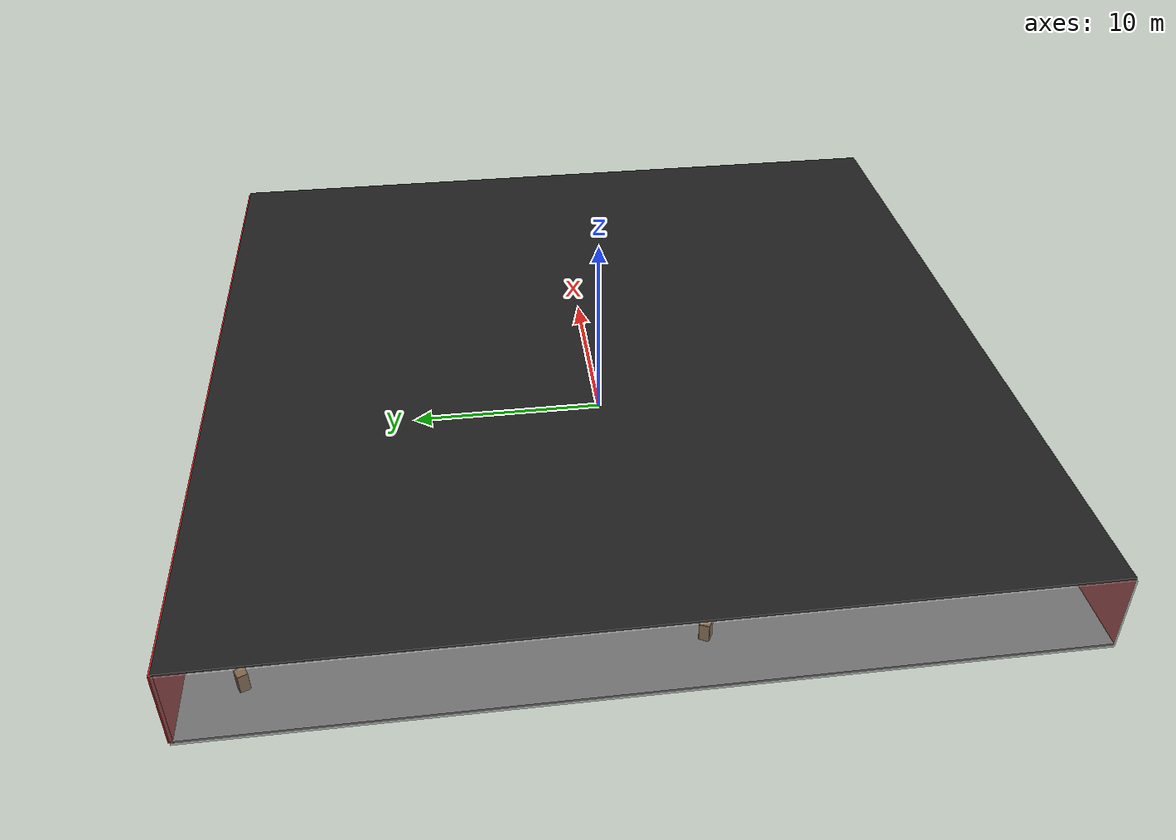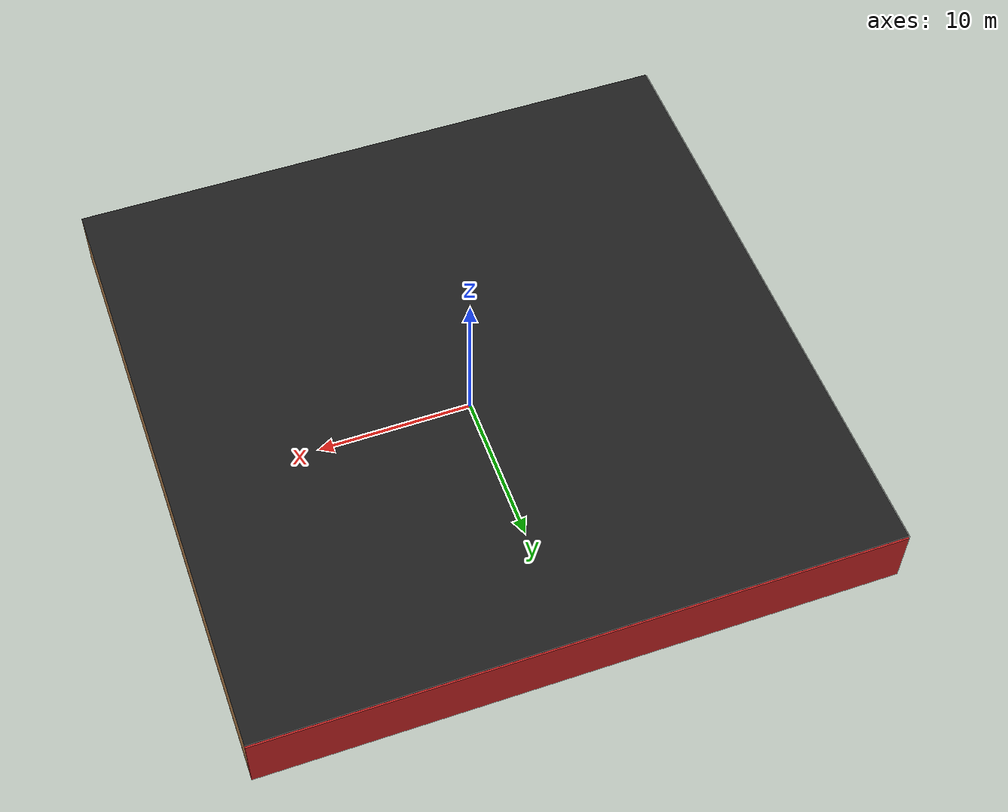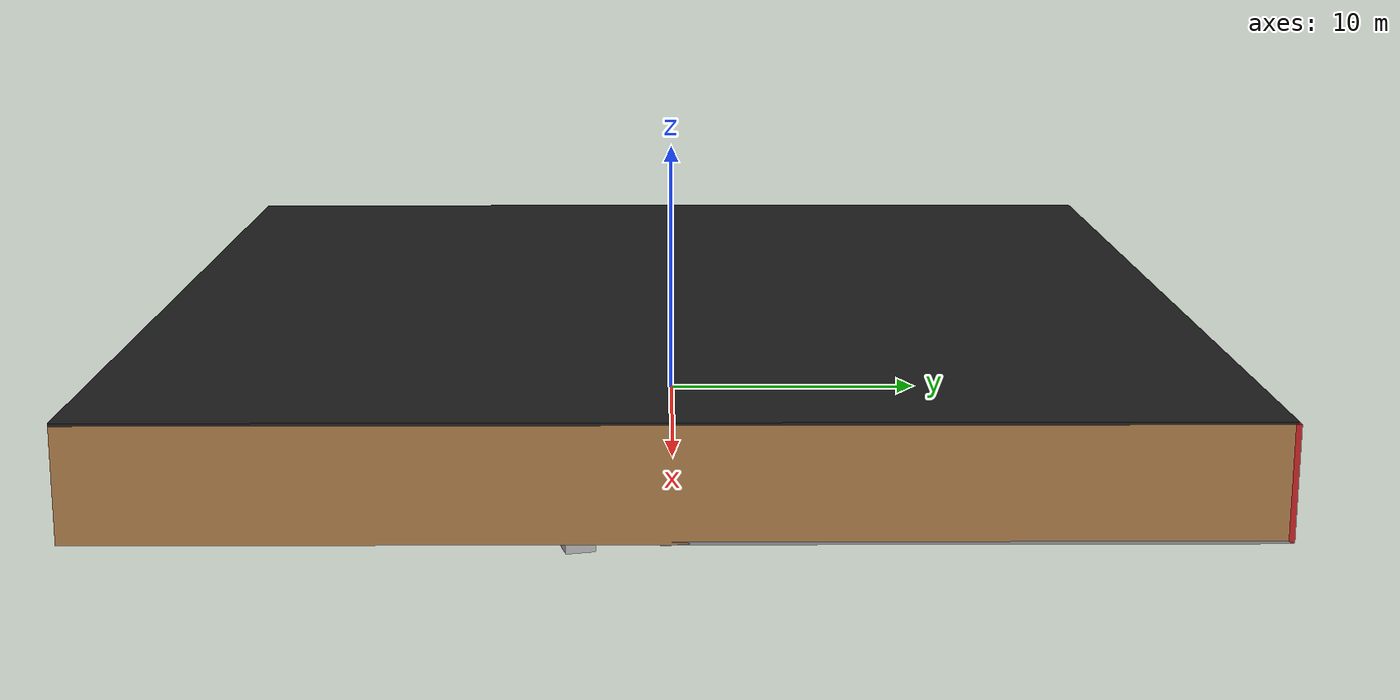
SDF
<sdf version="1.4">
 <world name="default">
  <physics type="ode">
   <max_step_size>0.001</max_step_size>
   <real_time_factor>1</real_time_factor>
   <real_time_update_rate>1000</real_time_update_rate>
   <gravity>0 0 -9.8</gravity>
  </physics>
  <scene><ambient>0.4 0.4 0.4 1</ambient><background>0.7 0.7 0.7 1</background><shadows>1</shadows></scene>
  <model name="Surrounding">
   <static>1</static>
   <link name="Ceiling">
    <collision name="Ceiling_Collision"><geometry><box><size>40 40 0.1</size></box></geometry></collision>
    <visual name="Ceiling_Visual">
     <geometry><box><size>40 40 0.1</size></box></geometry>
     <material>
      <script><uri>file://media/materials/scripts/gazebo.material</uri><name>Gazebo/Black</name></script>
     </material>
    </visual>
    <pose>0 0 4.05 0 0 0</pose>
   </link>
   <link name="Wall_South">
    <collision name="Wall_South_Collision">
     <geometry><box><size>40 0 4</size></box></geometry>
     <pose>0 0 2 0 -0 0</pose>
    </collision>
    <visual name="Wall_South_Visual">
     <pose>0 0 2 0 -0 0</pose>
     <geometry><box><size>40 0 4</size></box></geometry>
     <material>
      <script><uri>file://media/materials/scripts/gazebo.material</uri><name>Gazebo/RedGlow</name></script>
     </material>
    </visual>
    <velocity_decay><linear>0</linear><angular>0</angular></velocity_decay>
    <pose>0 -20 0 0 -0 0</pose>
   </link>
   <link name="Wall_East">
    <collision name="Wall_21_Collision">
     <geometry><box><size>40 0 4</size></box></geometry>
     <pose>0 0 2 0 -0 0</pose>
    </collision>
    <visual name="Wall_21_Visual">
     <pose>0 0 2 0 -0 0</pose>
     <geometry><box><size>40 0 4</size></box></geometry>
     <material>
      <script><uri>file://media/materials/scripts/gazebo.material</uri><name>Gazebo/WoodPallet</name></script>
     </material>
    </visual>
    <velocity_decay><linear>0</linear><angular>0</angular></velocity_decay>
    <pose>20 0 0 0 -0 1.5708</pose>
   </link>
   <link name="Wall_North">
    <collision name="Wall_22_Collision">
     <geometry><box><size>40 0.2 4</size></box></geometry>
     <pose>0 0 2 0 -0 0</pose>
    </collision>
    <visual name="Wall_22_Visual">
     <pose>0 0 2 0 -0 0</pose>
     <geometry><box><size>40 0.2 4</size></box></geometry>
     <material>
      <script><uri>file://media/materials/scripts/gazebo.material</uri><name>Gazebo/RedBright</name></script>
     </material>
    </visual>
    <velocity_decay><linear>0</linear><angular>0</angular></velocity_decay>
    <pose>0 20 0 0 -0 0</pose>
   </link>
   <link name="Wall_West">
    <collision name="Wall_23_Collision">
     <geometry><box><size>40 0.2 4</size></box></geometry>
     <pose>0 0 2 0 -0 0</pose>
    </collision>
    <visual name="Wall_23_Visual">
     <pose>0 0 2 0 -0 0</pose>
     <geometry><box><size>40 0.2 4</size></box></geometry>
     <material>
      <script><uri>file://media/materials/scripts/gazebo.material</uri><name>Gazebo/GreyTransparent</name></script>
     </material>
    </visual>
    <velocity_decay><linear>0</linear><angular>0</angular></velocity_decay>
    <pose>-20 0 0 0 0 -1.5708</pose>
   </link>
   <link name="Ground_link">
    <collision name="collision">
     <pose>0 0 .05 0 -0 0</pose>
     <geometry><box><size>40 40 0.1</size></box></geometry>
    </collision>
    <visual name="visual">
     <pose>0 0 .05 0 -0 0</pose>
     <geometry><box><size>40 40 0.1</size></box></geometry>
     <material>
      <script><uri>file://media/materials/scripts/gazebo.material</uri><name>Gazebo/Grey</name></script>
     </material>
    </visual>
   </link>
   <static>1</static>
  </model>
  <spherical_coordinates>
   <surface_model>EARTH_WGS84</surface_model>
   <latitude_deg>0</latitude_deg>
   <longitude_deg>0</longitude_deg>
   <elevation>0</elevation>
   <heading_deg>0</heading_deg>
  </spherical_coordinates>
  <light name="lightball_0" type="diffuse">
   <diffuse>0.8 0.8 0.8 1</diffuse>
   <specular>0.2 0.2 0.2 1</specular>
   <attenuation>
    <range>100</range>
    <constant>0.7</constant>
    <linear>0.01</linear>
    <quadratic>0.001</quadratic>
   </attenuation>
   <direction>-0.5 0.1 -0.9</direction>
   <pose>14.5088415441 19.1114277784 3.57657005887 0 0 0</pose>
  </light>
  <light name="lightball_1" type="diffuse">
   <diffuse>0.8 0.8 0.8 1</diffuse>
   <specular>0.2 0.2 0.2 1</specular>
   <attenuation>
    <range>100</range>
    <constant>0.7</constant>
    <linear>0.01</linear>
    <quadratic>0.001</quadratic>
   </attenuation>
   <direction>-0.5 0.1 -0.9</direction>
   <pose>-13.8709950739 0.276319489277 3.08435676083 0 0 0</pose>
  </light>
  <light name="lightball_2" type="diffuse">
   <diffuse>0.8 0.8 0.8 1</diffuse>
   <specular>0.2 0.2 0.2 1</specular>
   <attenuation>
    <range>100</range>
    <constant>0.7</constant>
    <linear>0.01</linear>
    <quadratic>0.001</quadratic>
   </attenuation>
   <direction>-0.5 0.1 -0.9</direction>
   <pose>4.50429732733 12.4195119596 3.20464170706 0 0 0</pose>
  </light>
  <light name="lightball_3" type="diffuse">
   <diffuse>0.8 0.8 0.8 1</diffuse>
   <specular>0.2 0.2 0.2 1</specular>
   <attenuation>
    <range>100</range>
    <constant>0.7</constant>
    <linear>0.01</linear>
    <quadratic>0.001</quadratic>
   </attenuation>
   <direction>-0.5 0.1 -0.9</direction>
   <pose>-19.8559674068 5.64868759276 2.44371113496 0 0 0</pose>
  </light>
  <light name="lightball_4" type="diffuse">
   <diffuse>0.8 0.8 0.8 1</diffuse>
   <specular>0.2 0.2 0.2 1</specular>
   <attenuation>
    <range>100</range>
    <constant>0.7</constant>
    <linear>0.01</linear>
    <quadratic>0.001</quadratic>
   </attenuation>
   <direction>-0.5 0.1 -0.9</direction>
   <pose>1.08719954831 -9.96045386915 3.5256807557 0 0 0</pose>
  </light>
  <light name="lightball_5" type="diffuse">
   <diffuse>0.8 0.8 0.8 1</diffuse>
   <specular>0.2 0.2 0.2 1</specular>
   <attenuation>
    <range>100</range>
    <constant>0.7</constant>
    <linear>0.01</linear>
    <quadratic>0.001</quadratic>
   </attenuation>
   <direction>-0.5 0.1 -0.9</direction>
   <pose>9.01680619663 -0.481306971371 3.15956368579 0 0 0</pose>
  </light>
  <light name="lightball_6" type="diffuse">
   <diffuse>0.8 0.8 0.8 1</diffuse>
   <specular>0.2 0.2 0.2 1</specular>
   <attenuation>
    <range>100</range>
    <constant>0.7</constant>
    <linear>0.01</linear>
    <quadratic>0.001</quadratic>
   </attenuation>
   <direction>-0.5 0.1 -0.9</direction>
   <pose>-16.5725223637 -15.036369133 0.741782621691 0 0 0</pose>
  </light>
  <light name="lightball_7" type="diffuse">
   <diffuse>0.8 0.8 0.8 1</diffuse>
   <specular>0.2 0.2 0.2 1</specular>
   <attenuation>
    <range>100</range>
    <constant>0.7</constant>
    <linear>0.01</linear>
    <quadratic>0.001</quadratic>
   </attenuation>
   <direction>-0.5 0.1 -0.9</direction>
   <pose>-6.66658625195 -9.34889746435 3.15630989105 0 0 0</pose>
  </light>
  <light name="lightball_8" type="diffuse">
   <diffuse>0.8 0.8 0.8 1</diffuse>
   <specular>0.2 0.2 0.2 1</specular>
   <attenuation>
    <range>100</range>
    <constant>0.7</constant>
    <linear>0.01</linear>
    <quadratic>0.001</quadratic>
   </attenuation>
   <direction>-0.5 0.1 -0.9</direction>
   <pose>0.00450367752565 6.86558669679 2.63531918451 0 0 0</pose>
  </light>
  <light name="lightball_9" type="diffuse">
   <diffuse>0.8 0.8 0.8 1</diffuse>
   <specular>0.2 0.2 0.2 1</specular>
   <attenuation>
    <range>100</range>
    <constant>0.7</constant>
    <linear>0.01</linear>
    <quadratic>0.001</quadratic>
   </attenuation>
   <direction>-0.5 0.1 -0.9</direction>
   <pose>-7.92232562563 8.93979827736 1.13376730137 0 0 0</pose>
  </light>
  <light name="lightball_10" type="diffuse">
   <diffuse>0.8 0.8 0.8 1</diffuse>
   <specular>0.2 0.2 0.2 1</specular>
   <attenuation>
    <range>100</range>
    <constant>0.7</constant>
    <linear>0.01</linear>
    <quadratic>0.001</quadratic>
   </attenuation>
   <direction>-0.5 0.1 -0.9</direction>
   <pose>-2.59482127027 3.32704255605 2.96513364409 0 0 0</pose>
  </light>
  <light name="lightball_11" type="diffuse">
   <diffuse>0.8 0.8 0.8 1</diffuse>
   <specular>0.2 0.2 0.2 1</specular>
   <attenuation>
    <range>100</range>
    <constant>0.7</constant>
    <linear>0.01</linear>
    <quadratic>0.001</quadratic>
   </attenuation>
   <direction>-0.5 0.1 -0.9</direction>
   <pose>-17.6506082353 14.014721323 1.71251879005 0 0 0</pose>
  </light>
  <include><uri>model://cabinet</uri><pose>-17.2858081453 -2.41191751052 0 0 0 2.64905315835</pose></include>
  <include><uri>model://cabinet</uri><pose>-17.5358653572 17.3362739138 0 0 0 1.97858835089</pose></include>
  <include><uri>model://cabinet</uri><pose>-13.8355447 0.64117168792 0 0 0 1.52426284552</pose></include>
  <include>
   <uri>model://construction_cone</uri>
   <pose>-13.9314949406 7.55235255127 0 0 0 2.1618376745</pose>
  </include>
  <include><uri>model://cabinet</uri><pose>-14.7640732803 15.9636274305 0 0 0 1.72705513426</pose></include>
  <include>
   <uri>model://robocup_3Dsim_goal</uri>
   <pose>-12.425612109 -14.2268952631 0 0 0 2.03669588455</pose>
  </include>
  <include><uri>model://table</uri><pose>-12.5219175551 0.997885552412 0 0 0 2.7161899542</pose></include>
  <include><uri>model://table</uri><pose>-8.06161031299 -5.23334574222 0 0 0 0.199501994017</pose></include>
  <include>
   <uri>model://construction_cone</uri>
   <pose>-7.36220699917 9.38604608227 0 0 0 1.50787393063</pose>
  </include>
  <include><uri>model://cabinet</uri><pose>-5.20437169569 -12.6268497123 0 0 0 0.817469867446</pose></include>
  <include>
   <uri>model://construction_cone</uri>
   <pose>-1.38025133629 -15.0030147045 0 0 0 2.53333605465</pose>
  </include>
  <include>
   <uri>model://textured_shapes</uri>
   <pose>-3.30552999441 6.38051258868 0 0 0 1.46844312124</pose>
  </include>
  <include>
   <uri>model://textured_shapes</uri>
   <pose>0.892739387686 0.945914214535 0 0 0 2.83799114582</pose>
  </include>
  <include><uri>model://table</uri><pose>1.51292048433 15.9413893674 0 0 0 2.60482933957</pose></include>
  <include><uri>model://cabinet</uri><pose>2.7136887317 2.74670009001 0 0 0 1.64872057018</pose></include>
  <include><uri>model://cabinet</uri><pose>4.21688894093 11.3111046964 0 0 0 1.62778722698</pose></include>
  <include><uri>model://cabinet</uri><pose>5.65864505683 -5.77163195847 0 0 0 3.01865208885</pose></include>
  <include><uri>model://table</uri><pose>7.44620456494 3.87943296795 0 0 0 2.42372184881</pose></include>
  <include><uri>model://cabinet</uri><pose>8.80611641276 -11.8137321141 0 0 0 0.475195212376</pose></include>
  <include>
   <uri>model://robocup_3Dsim_goal</uri>
   <pose>9.38466164897 -4.98178729329 0 0 0 2.30398158767</pose>
  </include>
  <include><uri>model://table</uri><pose>12.6953230185 11.775866339 0 0 0 2.22313879045</pose></include>
  <include><uri>model://cabinet</uri><pose>14.5761101028 2.88521532079 0 0 0 2.49271867436</pose></include>
  <include>
   <uri>model://textured_shapes</uri>
   <pose>18.495306831 -1.71510157443 0 0 0 0.23857380371</pose>
  </include>
  <include><uri>model://cabinet</uri><pose>18.5014537585 19.2220277529 0 0 0 1.07725241891</pose></include>
 </world>
</sdf>

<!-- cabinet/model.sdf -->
<sdf version="1.5">
  <model name="cabinet">
    <static>true</static>
    <link name="cabinet_bottom_plate">
      <inertial>
        <pose>0 0 -1 0 0 0</pose>
        <inertia>
          <ixx>2.050000</ixx>
          <ixy>0</ixy>
          <ixz>0</ixz>
          <iyy>2.050000</iyy>
          <iyz>0</iyz>
          <izz>2.050000</izz>
        </inertia>
        <mass>25.000000</mass>
      </inertial>
      <collision name="cabinet_bottom_plate_geom">
        <pose>0 0 0.010000 0 0 0</pose>
        <geometry>
          <box>
            <size>0.450000 0.450000 0.020000</size>
          </box>
        </geometry>
      </collision>
      <visual name="cabinet_bottom_plate_geom_visual">
        <pose>0 0 0.010000 0 0 0</pose>
        <geometry>
          <box>
            <size>0.450000 0.450000 0.020000</size>
          </box>
        </geometry>
        <material>
          <script>
            <uri>model://media/materials/scripts/gazebo.material</uri>
            <name>Gazebo/Wood</name>
          </script>
        </material>
      </visual>
      <collision name="cabinet_bottom_plate_geom_cabinet_back_plate">
        <pose>0.235000 0 0.510000 0 0 0</pose>
        <geometry>
          <box>
            <size>0.020000 0.450000 1.020000</size>
          </box>
        </geometry>
      </collision>
      <visual name="cabinet_bottom_plate_geom_cabinet_back_plate_visual">
        <pose>0.235000 0 0.510000 0 0 0</pose>
        <geometry>
          <box>
            <size>0.020000 0.450000 1.020000</size>
          </box>
        </geometry>
        <material>
          <script>
            <uri>model://media/materials/scripts/gazebo.material</uri>
            <name>Gazebo/Wood</name>
          </script>
        </material>
      </visual>
      <collision name="cabinet_bottom_plate_geom_cabinet_left_plate">
        <pose>0 0.235000 0.510000 0 0 0</pose>
        <geometry>
          <box>
            <size>0.450000 0.020000 1.020000</size>
          </box>
        </geometry>
      </collision>
      <visual name="cabinet_bottom_plate_geom_cabinet_left_plate_visual">
        <pose>0 0.235000 0.510000 0 0 0</pose>
        <geometry>
          <box>
            <size>0.450000 0.020000 1.020000</size>
          </box>
        </geometry>
        <material>
          <script>
            <uri>model://media/materials/scripts/gazebo.material</uri>
            <name>Gazebo/Wood</name>
          </script>
        </material>
      </visual>
      <collision name="cabinet_bottom_plate_geom_cabinet_middle_plate">
        <pose>0 0 0.510000 0 0 0</pose>
        <geometry>
          <box>
            <size>0.450000 0.450000 0.020000</size>
          </box>
        </geometry>
      </collision>
      <visual name="cabinet_bottom_plate_geom_cabinet_middle_plate_visual">
        <pose>0 0 0.510000 0 0 0</pose>
        <geometry>
          <box>
            <size>0.450000 0.450000 0.020000</size>
          </box>
        </geometry>
        <material>
          <script>
            <uri>model://media/materials/scripts/gazebo.material</uri>
            <name>Gazebo/Wood</name>
          </script>
        </material>
      </visual>
      <collision name="cabinet_bottom_plate_geom_cabinet_right_plate">
        <pose>0 -0.235000 0.510000 0 0 0</pose>
        <geometry>
          <box>
            <size>0.450000 0.020000 1.020000</size>
          </box>
        </geometry>
      </collision>
      <visual name="cabinet_bottom_plate_geom_cabinet_right_plate_visual">
        <pose>0 -0.235000 0.510000 0 0 0</pose>
        <geometry>
          <box>
            <size>0.450000 0.020000 1.020000</size>
          </box>
        </geometry>
        <material>
          <script>
            <uri>model://media/materials/scripts/gazebo.material</uri>
            <name>Gazebo/Wood</name>
          </script>
        </material>
      </visual>
      <collision name="cabinet_bottom_plate_geom_cabinet_top_plate">
        <pose>0 0 1.010000 0 0 0</pose>
        <geometry>
          <box>
            <size>0.450000 0.450000 0.020000</size>
          </box>
        </geometry>
      </collision>
      <visual name="cabinet_bottom_plate_geom_cabinet_top_plate_visual">
        <pose>0 0 1.010000 0 0 0</pose>
        <geometry>
          <box>
            <size>0.450000 0.450000 0.020000</size>
          </box>
        </geometry>
        <material>
          <script>
            <uri>model://media/materials/scripts/gazebo.material</uri>
            <name>Gazebo/Wood</name>
          </script>
        </material>
      </visual>
    </link>
  </model>
</sdf>

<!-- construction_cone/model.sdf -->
<sdf version="1.5">
  <model name="Construction Cone">
    <link name="link">
      <collision name="collision">
        <geometry>
          <mesh>
            <scale>10 10 10</scale>
            <uri>file://isr-testbed/construction_cone/meshes/construction_cone.dae</uri>
          </mesh>
        </geometry>
      </collision>
      <visual name="visual">
        <geometry>
          <mesh>
            <scale>10 10 10</scale>
            <uri>file://isr-testbed/construction_cone/meshes/construction_cone.dae</uri>
          </mesh>
        </geometry>
      </visual>
    </link>
  </model>
</sdf>

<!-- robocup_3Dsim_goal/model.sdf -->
<sdf version="1.5">
  <model name="robocup_3d_goal">
    <static>true</static>
    <link name="left_post">
      <pose>0 1.05 0.45 0 0 0</pose>
      <collision name="collision">
        <geometry>
          <cylinder>
            <radius>0.05</radius>
            <length>0.9</length>
          </cylinder>
        </geometry>
      </collision>
      <visual name="visual">
        <geometry>
          <cylinder>
            <radius>0.05</radius>
            <length>0.9</length>
          </cylinder>
        </geometry>
        <material>
          <script>
            <uri>file://media/materials/scripts/gazebo.material</uri>
            <name>Gazebo/ZincYellow</name>
          </script>
        </material>
      </visual>
    </link>
    <link name="left_support_horiz_lower">
      <pose>0.30 1.05 0.01 0 0 0</pose>
      <collision name="collision">
        <geometry>
          <box>
            <size>0.50 0.02 0.02</size>
          </box>
        </geometry>
      </collision>
      <visual name="visual">
        <geometry>
          <box>
            <size>0.50 0.02 0.02</size>
          </box>
        </geometry>
        <material>
          <script>
            <uri>file://media/materials/scripts/gazebo.material</uri>
            <name>Gazebo/White</name>
          </script>
        </material>
      </visual>
    </link>
    <link name="left_support_horiz_upper">
      <pose>0.30 1.05 0.79 0 0 0</pose>
      <collision name="collision">
        <geometry>
          <box>
            <size>0.50 0.02 0.02</size>
          </box>
        </geometry>
      </collision>
      <visual name="visual">
        <geometry>
          <box>
            <size>0.50 0.02 0.02</size>
          </box>
        </geometry>
        <material>
          <script>
            <uri>file://media/materials/scripts/gazebo.material</uri>
            <name>Gazebo/White</name>
          </script>
        </material>
      </visual>
    </link>
    <link name="left_support_vertical">
      <pose>0.56 1.05 0.4 0 1.5708 0</pose>
      <collision name="collision">
        <geometry>
          <box>
            <size>0.80 0.02 0.02</size>
          </box>
        </geometry>
      </collision>
      <visual name="visual">
        <geometry>
          <box>
            <size>0.80 0.02 0.02</size>
          </box>
        </geometry>
        <material>
          <script>
            <uri>file://media/materials/scripts/gazebo.material</uri>
            <name>Gazebo/White</name>
          </script>
        </material>
      </visual>
    </link>
    <link name="right_support_horiz_lower">
      <pose>0.30 -1.05 0.01 0 0 0</pose>
      <collision name="collision">
        <geometry>
          <box>
            <size>0.50 0.02 0.02</size>
          </box>
        </geometry>
      </collision>
      <visual name="visual">
        <geometry>
          <box>
            <size>0.50 0.02 0.02</size>
          </box>
        </geometry>
        <material>
          <script>
            <uri>file://media/materials/scripts/gazebo.material</uri>
            <name>Gazebo/White</name>
          </script>
        </material>
      </visual>
    </link>
    <link name="right_support_horiz_upper">
      <pose>0.30 -1.05 0.79 0 0 0</pose>
      <collision name="collision">
        <geometry>
          <box>
            <size>0.50 0.02 0.02</size>
          </box>
        </geometry>
      </collision>
      <visual name="visual">
        <geometry>
          <box>
            <size>0.50 0.02 0.02</size>
          </box>
        </geometry>
        <material>
          <script>
            <uri>file://media/materials/scripts/gazebo.material</uri>
            <name>Gazebo/White</name>
          </script>
        </material>
      </visual>
    </link>
    <link name="right_support_vertical">
      <pose>0.56 -1.05 0.4 0 1.5708 0</pose>
      <collision name="collision">
        <geometry>
          <box>
            <size>0.80 0.02 0.02</size>
          </box>
        </geometry>
      </collision>
      <visual name="visual">
        <geometry>
          <box>
            <size>0.80 0.02 0.02</size>
          </box>
        </geometry>
        <material>
          <script>
            <uri>file://media/materials/scripts/gazebo.material</uri>
            <name>Gazebo/White</name>
          </script>
        </material>
      </visual>
    </link>
    <link name="center_support_horiz_lower">
      <pose>0.56 0 0.01 0 1.5708 0</pose>
      <collision name="collision">
        <geometry>
          <box>
            <size>0.02 2.08 0.02</size>
          </box>
        </geometry>
      </collision>
      <visual name="visual">
        <geometry>
          <box>
            <size>0.02 2.08 0.02</size>
          </box>
        </geometry>
        <material>
          <script>
            <uri>file://media/materials/scripts/gazebo.material</uri>
            <name>Gazebo/White</name>
          </script>
        </material>
      </visual>
    </link>
    <link name="center_support_horiz_upper">
      <pose>0.56 0 0.79 0 1.5708 0</pose>
      <collision name="collision">
        <geometry>
          <box>
            <size>0.02 2.08 0.02</size>
          </box>
        </geometry>
      </collision>
      <visual name="visual">
        <geometry>
          <box>
            <size>0.02 2.08 0.02</size>
          </box>
        </geometry>
        <material>
          <script>
            <uri>file://media/materials/scripts/gazebo.material</uri>
            <name>Gazebo/White</name>
          </script>
        </material>
      </visual>
    </link>
    <link name="right_post">
      <pose>0 -1.05 0.45 0 0 0</pose>
      <collision name="collision">
        <geometry>
          <cylinder>
            <radius>0.05</radius>
            <length>0.9</length>
          </cylinder>
        </geometry>
      </collision>
      <visual name="visual">
        <geometry>
          <cylinder>
            <radius>0.05</radius>
            <length>0.9</length>
          </cylinder>
        </geometry>
        <material>
          <script>
            <uri>file://media/materials/scripts/gazebo.material</uri>
            <name>Gazebo/ZincYellow</name>
          </script>
        </material>
      </visual>
    </link>
    <link name="crossbar">
      <pose>0 0 0.85 1.57 1.57 0</pose>
      <collision name="collision">
        <geometry>
          <cylinder>
            <radius>0.05</radius>
            <length>2.0</length>
          </cylinder>
        </geometry>
      </collision>
      <visual name="visual">
        <geometry>
          <cylinder>
            <radius>0.05</radius>
            <length>2.0</length>
          </cylinder>
        </geometry>
        <material>
          <script>
            <uri>file://media/materials/scripts/gazebo.material</uri>
            <name>Gazebo/ZincYellow</name>
          </script>
        </material>
      </visual>
    </link>
    <link name="center_net">
      <pose>0.56 0 0.40 0 0 0</pose>
      <collision name="collision">
        <geometry>
          <box>
            <size>0.01 2.1 0.80</size>
          </box>
        </geometry>
      </collision>
      <visual name="visual">
        <geometry>
          <box>
            <size>0.01 2.1 0.80</size>
          </box>
        </geometry>
        <material>
          <script>
            <uri>model://../model_source/models/robocup09_spl_field/materials/scripts/</uri>
            <uri>model://../model_source/models/robocup09_spl_field/materials/textures/</uri>
            <name>RoboCup/Net</name>
          </script>
        </material>
      </visual>
    </link>
    <link name="left_net">
      <pose>0.30 1.05 0.40 0 0 0</pose>
      <collision name="collision">
        <geometry>
          <box>
            <size>0.50 0.01 0.76</size>
          </box>
        </geometry>
      </collision>
      <visual name="visual">
        <geometry>
          <box>
            <size>0.50 0.01 0.76</size>
          </box>
        </geometry>
        <material>
          <script>
            <uri>model://../model_source/models/robocup09_spl_field/materials/scripts/</uri>
            <uri>model://../model_source/models/robocup09_spl_field/materials/textures/</uri>
            <name>RoboCup/Net</name>
          </script>
        </material>
      </visual>
    </link>
    <link name="right_net">
      <pose>0.30 -1.05 0.40 0 0 0</pose>
      <collision name="collision">
        <geometry>
          <box>
            <size>0.50 0.01 0.76</size>
          </box>
        </geometry>
      </collision>
      <visual name="visual">
        <geometry>
          <box>
            <size>0.50 0.01 0.76</size>
          </box>
        </geometry>
        <material>
          <script>
            <uri>model://../model_source/models/robocup09_spl_field/materials/scripts/</uri>
            <uri>model://../model_source/models/robocup09_spl_field/materials/textures/</uri>
            <name>RoboCup/Net</name>
          </script>
        </material>
      </visual>
    </link>
  </model>
</sdf>

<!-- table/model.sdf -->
<sdf version="1.5">
  <model name="table">
    <static>true</static>
    <link name="link">
      <collision name="surface">
        <pose>0 0 1.0 0 0 0</pose>
        <geometry>
          <box>
            <size>1.5 0.8 0.03</size>
          </box>
        </geometry>
        <surface>
          <friction>
            <ode>
              <mu>0.6</mu>
              <mu2>0.6</mu2>
            </ode>
          </friction>
        </surface>
      </collision>
      <visual name="visual1">
        <pose>0 0 1.0 0 0 0</pose>
        <geometry>
          <box>
            <size>1.5 0.8 0.03</size>
          </box>
        </geometry>
        <material>
          <script>
            <uri>model://media/materials/scripts/gazebo.material</uri>
            <name>Gazebo/Wood</name>
          </script>
        </material>
      </visual>
      <collision name="front_left_leg">
        <pose>0.68 0.38 0.5 0 0 0</pose>
        <geometry>
          <cylinder>
            <radius>0.02</radius>
            <length>1.0</length>
          </cylinder>
        </geometry>
      </collision>
      <visual name="front_left_leg">
        <pose>0.68 0.38 0.5 0 0 0</pose>
        <geometry>
          <cylinder>
            <radius>0.02</radius>
            <length>1.0</length>
          </cylinder>
        </geometry>
        <material>
          <script>
            <uri>model://media/materials/scripts/gazebo.material</uri>
            <name>Gazebo/Grey</name>
          </script>
        </material>
      </visual>
      <collision name="front_right_leg">
        <pose>0.68 -0.38 0.5 0 0 0</pose>
        <geometry>
          <cylinder>
            <radius>0.02</radius>
            <length>1.0</length>
          </cylinder>
        </geometry>
      </collision>
      <visual name="front_right_leg">
        <pose>0.68 -0.38 0.5 0 0 0</pose>
        <geometry>
          <cylinder>
            <radius>0.02</radius>
            <length>1.0</length>
          </cylinder>
        </geometry>
        <material>
          <script>
            <uri>model://media/materials/scripts/gazebo.material</uri>
            <name>Gazebo/Grey</name>
          </script>
        </material>
      </visual>
      <collision name="back_right_leg">
        <pose>-0.68 -0.38 0.5 0 0 0</pose>
        <geometry>
          <cylinder>
            <radius>0.02</radius>
            <length>1.0</length>
          </cylinder>
        </geometry>
      </collision>
      <visual name="back_right_leg">
        <pose>-0.68 -0.38 0.5 0 0 0</pose>
        <geometry>
          <cylinder>
            <radius>0.02</radius>
            <length>1.0</length>
          </cylinder>
        </geometry>
        <material>
          <script>
            <uri>model://media/materials/scripts/gazebo.material</uri>
            <name>Gazebo/Grey</name>
          </script>
        </material>
      </visual>
      <collision name="back_left_leg">
        <pose>-0.68 0.38 0.5 0 0 0</pose>
        <geometry>
          <cylinder>
            <radius>0.02</radius>
            <length>1.0</length>
          </cylinder>
        </geometry>
      </collision>
      <visual name="back_left_leg">
        <pose>-0.68 0.38 0.5 0 0 0</pose>
        <geometry>
          <cylinder>
            <radius>0.02</radius>
            <length>1.0</length>
          </cylinder>
        </geometry>
        <material>
          <script>
            <uri>model://media/materials/scripts/gazebo.material</uri>
            <name>Gazebo/Grey</name>
          </script>
        </material>
      </visual>
    </link>
  </model>
</sdf>

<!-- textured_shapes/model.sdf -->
<sdf version="1.6">
  <model name="textured_shapes">
    <pose>0 0 0.5 0 0 0</pose>
    <link name="box">
      <pose>0 -1.5 0 0 0 0</pose>
      <collision name="collision">
        <geometry>
          <box>
            <size>1 1 1</size>
          </box>
        </geometry>
      </collision>
      <visual name="visual">
        <geometry>
          <box>
            <size>1 1 1</size>
          </box>
        </geometry>
        <material>
          <script>
            <uri>model://../model_source/models/textured_shapes/materials/scripts</uri>
            <uri>model://../model_source/models/textured_shapes/materials/textures</uri>
            <name>TexturedShape/Squares</name>
          </script>
        </material>
      </visual>
    </link>
    <link name="sphere">
      <collision name="collision">
        <geometry>
          <sphere>
            <radius>0.5</radius>
          </sphere>
        </geometry>
      </collision>
      <visual name="visual">
        <geometry>
          <sphere>
            <radius>0.5</radius>
          </sphere>
        </geometry>
        <material>
          <script>
            <uri>model://../model_source/models/textured_shapes/materials/scripts</uri>
            <uri>model://../model_source/models/textured_shapes/materials/textures</uri>
            <name>TexturedShape/Squares</name>
          </script>
        </material>
      </visual>
    </link>
    <link name="cylinder">
      <pose>0 1.5 0 0 0 0</pose>
      <collision name="collision">
        <geometry>
          <cylinder>
            <radius>0.5</radius>
            <length>1</length>
          </cylinder>
        </geometry>
      </collision>
      <visual name="visual">
        <geometry>
          <cylinder>
            <radius>0.5</radius>
            <length>1</length>
          </cylinder>
        </geometry>
        <material>
          <script>
            <uri>model://../model_source/models/textured_shapes/materials/scripts</uri>
            <uri>model://../model_source/models/textured_shapes/materials/textures</uri>
            <name>TexturedShape/Squares</name>
          </script>
        </material>
      </visual>
    </link>
  </model>
</sdf>
